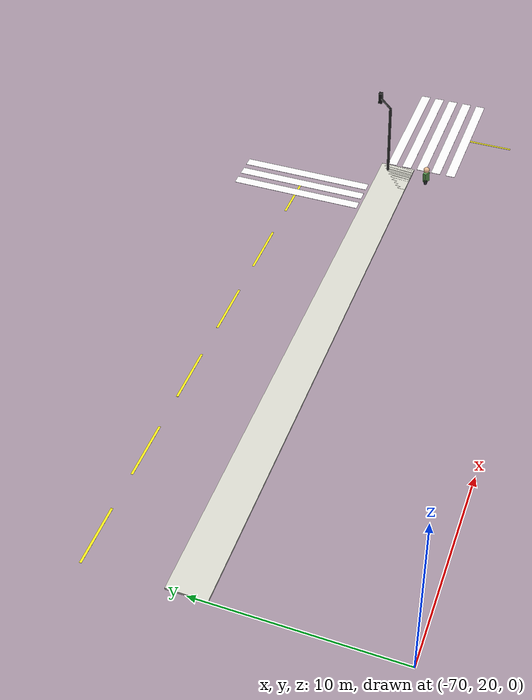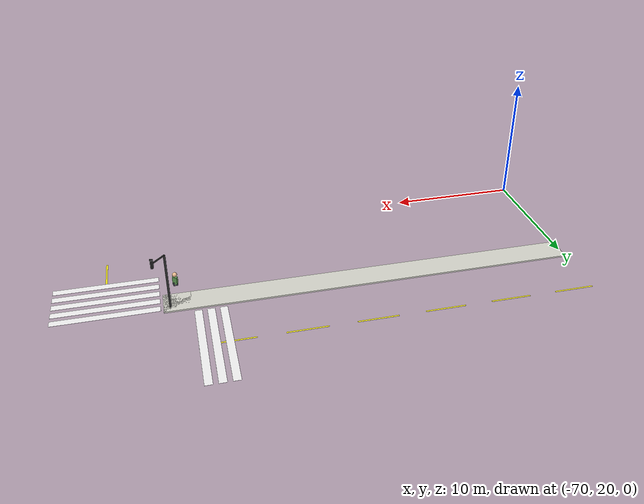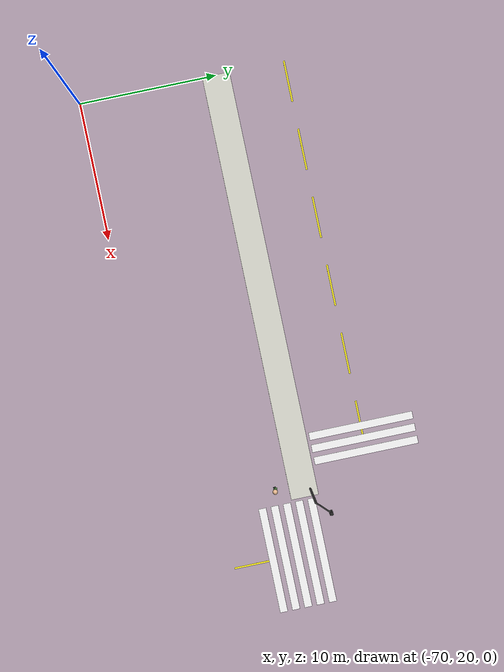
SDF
<sdf version="1.9">
 <world name="city">
  <model name="sw_h_48">
   <static>true</static>
   <pose>-54.5 30.0 0.065 0 0 0</pose>
   <link name="l">
    <collision name="c"><geometry><box><size>31.0 2.0 0.12</size></box></geometry></collision>
    <visual name="v">
     <geometry><box><size>31.0 2.0 0.12</size></box></geometry>
     <material>
      <ambient>0.82 0.82 0.78 1</ambient>
      <diffuse>0.82 0.82 0.78 1</diffuse>
      <specular>0.04 0.04 0.04 1</specular>
     </material>
    </visual>
   </link>
  </model>
  <model name="sw_corner_64">
   <static>true</static>
   <pose>-40.0 30.0 0.065 0 0 0</pose>
   <link name="l">
    <collision name="c"><geometry><box><size>2.0 2.0 0.12</size></box></geometry></collision>
    <visual name="v">
     <geometry><box><size>2.0 2.0 0.12</size></box></geometry>
     <material>
      <ambient>0.82 0.82 0.78 1</ambient>
      <diffuse>0.82 0.82 0.78 1</diffuse>
      <specular>0.04 0.04 0.04 1</specular>
     </material>
    </visual>
   </link>
  </model>
  <model name="cw_s_132">
   <static>true</static>
   <pose>-35.0 30.425 0.013000000000000001 0 0 0</pose>
   <link name="l">
    <visual name="v">
     <geometry><box><size>7.6 0.55 0.005</size></box></geometry>
     <material>
      <ambient>0.94 0.94 0.94 1</ambient>
      <diffuse>0.94 0.94 0.94 1</diffuse>
      <specular>0.04 0.04 0.04 1</specular>
     </material>
    </visual>
   </link>
  </model>
  <model name="cw_s_136">
   <static>true</static>
   <pose>-35.0 29.525 0.013000000000000001 0 0 0</pose>
   <link name="l">
    <visual name="v">
     <geometry><box><size>7.6 0.55 0.005</size></box></geometry>
     <material>
      <ambient>0.94 0.94 0.94 1</ambient>
      <diffuse>0.94 0.94 0.94 1</diffuse>
      <specular>0.04 0.04 0.04 1</specular>
     </material>
    </visual>
   </link>
  </model>
  <model name="cw_s_140">
   <static>true</static>
   <pose>-35.0 28.625 0.013000000000000001 0 0 0</pose>
   <link name="l">
    <visual name="v">
     <geometry><box><size>7.6 0.55 0.005</size></box></geometry>
     <material>
      <ambient>0.94 0.94 0.94 1</ambient>
      <diffuse>0.94 0.94 0.94 1</diffuse>
      <specular>0.04 0.04 0.04 1</specular>
     </material>
    </visual>
   </link>
  </model>
  <model name="cw_w_142">
   <static>true</static>
   <pose>-41.375 35.0 0.013000000000000001 0 0 0</pose>
   <link name="l">
    <visual name="v">
     <geometry><box><size>0.55 7.6 0.005</size></box></geometry>
     <material>
      <ambient>0.94 0.94 0.94 1</ambient>
      <diffuse>0.94 0.94 0.94 1</diffuse>
      <specular>0.04 0.04 0.04 1</specular>
     </material>
    </visual>
   </link>
  </model>
  <model name="cw_s_144">
   <static>true</static>
   <pose>-35.0 27.725 0.013000000000000001 0 0 0</pose>
   <link name="l">
    <visual name="v">
     <geometry><box><size>7.6 0.55 0.005</size></box></geometry>
     <material>
      <ambient>0.94 0.94 0.94 1</ambient>
      <diffuse>0.94 0.94 0.94 1</diffuse>
      <specular>0.04 0.04 0.04 1</specular>
     </material>
    </visual>
   </link>
  </model>
  <model name="cw_w_146">
   <static>true</static>
   <pose>-42.275 35.0 0.013000000000000001 0 0 0</pose>
   <link name="l">
    <visual name="v">
     <geometry><box><size>0.55 7.6 0.005</size></box></geometry>
     <material>
      <ambient>0.94 0.94 0.94 1</ambient>
      <diffuse>0.94 0.94 0.94 1</diffuse>
      <specular>0.04 0.04 0.04 1</specular>
     </material>
    </visual>
   </link>
  </model>
  <model name="cw_s_148">
   <static>true</static>
   <pose>-35.0 26.825 0.013000000000000001 0 0 0</pose>
   <link name="l">
    <visual name="v">
     <geometry><box><size>7.6 0.55 0.005</size></box></geometry>
     <material>
      <ambient>0.94 0.94 0.94 1</ambient>
      <diffuse>0.94 0.94 0.94 1</diffuse>
      <specular>0.04 0.04 0.04 1</specular>
     </material>
    </visual>
   </link>
  </model>
  <model name="cw_w_150">
   <static>true</static>
   <pose>-43.175 35.0 0.013000000000000001 0 0 0</pose>
   <link name="l">
    <visual name="v">
     <geometry><box><size>0.55 7.6 0.005</size></box></geometry>
     <material>
      <ambient>0.94 0.94 0.94 1</ambient>
      <diffuse>0.94 0.94 0.94 1</diffuse>
      <specular>0.04 0.04 0.04 1</specular>
     </material>
    </visual>
   </link>
  </model>
  <model name="dash_287">
   <static>true</static>
   <pose>-35.0 25.5 0.012 0 0 0</pose>
   <link name="l">
    <visual name="v">
     <geometry><box><size>0.12 3.0 0.003</size></box></geometry>
     <material>
      <ambient>0.95 0.9 0.1 1</ambient>
      <diffuse>0.95 0.9 0.1 1</diffuse>
      <specular>0.04 0.04 0.04 1</specular>
     </material>
    </visual>
   </link>
  </model>
  <model name="dash_382">
   <static>true</static>
   <pose>-68.5 35.0 0.012 0 0 0</pose>
   <link name="l">
    <visual name="v">
     <geometry><box><size>3.0 0.12 0.003</size></box></geometry>
     <material>
      <ambient>0.95 0.9 0.1 1</ambient>
      <diffuse>0.95 0.9 0.1 1</diffuse>
      <specular>0.04 0.04 0.04 1</specular>
     </material>
    </visual>
   </link>
  </model>
  <model name="dash_383">
   <static>true</static>
   <pose>-63.5 35.0 0.012 0 0 0</pose>
   <link name="l">
    <visual name="v">
     <geometry><box><size>3.0 0.12 0.003</size></box></geometry>
     <material>
      <ambient>0.95 0.9 0.1 1</ambient>
      <diffuse>0.95 0.9 0.1 1</diffuse>
      <specular>0.04 0.04 0.04 1</specular>
     </material>
    </visual>
   </link>
  </model>
  <model name="dash_384">
   <static>true</static>
   <pose>-58.5 35.0 0.012 0 0 0</pose>
   <link name="l">
    <visual name="v">
     <geometry><box><size>3.0 0.12 0.003</size></box></geometry>
     <material>
      <ambient>0.95 0.9 0.1 1</ambient>
      <diffuse>0.95 0.9 0.1 1</diffuse>
      <specular>0.04 0.04 0.04 1</specular>
     </material>
    </visual>
   </link>
  </model>
  <model name="dash_385">
   <static>true</static>
   <pose>-53.5 35.0 0.012 0 0 0</pose>
   <link name="l">
    <visual name="v">
     <geometry><box><size>3.0 0.12 0.003</size></box></geometry>
     <material>
      <ambient>0.95 0.9 0.1 1</ambient>
      <diffuse>0.95 0.9 0.1 1</diffuse>
      <specular>0.04 0.04 0.04 1</specular>
     </material>
    </visual>
   </link>
  </model>
  <model name="dash_386">
   <static>true</static>
   <pose>-48.5 35.0 0.012 0 0 0</pose>
   <link name="l">
    <visual name="v">
     <geometry><box><size>3.0 0.12 0.003</size></box></geometry>
     <material>
      <ambient>0.95 0.9 0.1 1</ambient>
      <diffuse>0.95 0.9 0.1 1</diffuse>
      <specular>0.04 0.04 0.04 1</specular>
     </material>
    </visual>
   </link>
  </model>
  <model name="dash_387">
   <static>true</static>
   <pose>-43.5 35.0 0.012 0 0 0</pose>
   <link name="l">
    <visual name="v">
     <geometry><box><size>3.0 0.12 0.003</size></box></geometry>
     <material>
      <ambient>0.95 0.9 0.1 1</ambient>
      <diffuse>0.95 0.9 0.1 1</diffuse>
      <specular>0.04 0.04 0.04 1</specular>
     </material>
    </visual>
   </link>
  </model>
  <model name="ped2_t_578">
   <static>true</static>
   <pose>-40.0 28 0.575 0 0 2.6</pose>
   <link name="l">
    <collision name="c"><geometry><box><size>0.35 0.2 0.6</size></box></geometry></collision>
    <visual name="v">
     <geometry><box><size>0.35 0.2 0.6</size></box></geometry>
     <material>
      <ambient>0.4 0.65 0.35 1</ambient>
      <diffuse>0.4 0.65 0.35 1</diffuse>
      <specular>0.04 0.04 0.04 1</specular>
     </material>
    </visual>
   </link>
  </model>
  <model name="ped2_h_579">
   <static>true</static>
   <pose>-40.0 28 1.075 0 0 0</pose>
   <link name="l">
    <visual name="v">
     <geometry><sphere><radius>0.18</radius></sphere></geometry>
     <material><ambient>0.9 0.72 0.56 1</ambient><diffuse>0.9 0.72 0.56 1</diffuse></material>
    </visual>
   </link>
  </model>
  <model name="ped2_l-0.1_580">
   <static>true</static>
   <pose>-40.1 28 0.275 0 0 0</pose>
   <link name="l">
    <collision name="c"><geometry><box><size>0.14 0.16 0.3</size></box></geometry></collision>
    <visual name="v">
     <geometry><box><size>0.14 0.16 0.3</size></box></geometry>
     <material>
      <ambient>0.25 0.25 0.3 1</ambient>
      <diffuse>0.25 0.25 0.3 1</diffuse>
      <specular>0.04 0.04 0.04 1</specular>
     </material>
    </visual>
   </link>
  </model>
  <model name="ped2_l0.1_581">
   <static>true</static>
   <pose>-39.9 28 0.275 0 0 0</pose>
   <link name="l">
    <collision name="c"><geometry><box><size>0.14 0.16 0.3</size></box></geometry></collision>
    <visual name="v">
     <geometry><box><size>0.14 0.16 0.3</size></box></geometry>
     <material>
      <ambient>0.25 0.25 0.3 1</ambient>
      <diffuse>0.25 0.25 0.3 1</diffuse>
      <specular>0.04 0.04 0.04 1</specular>
     </material>
    </visual>
   </link>
  </model>
  <model name="tl_-35_35_0_pole_738">
   <static>true</static>
   <pose>-39.5 30.5 2.255 0 0 0</pose>
   <link name="l">
    <collision name="c">
     <geometry><cylinder><radius>0.08</radius><length>4.5</length></cylinder></geometry>
    </collision>
    <visual name="v">
     <geometry><cylinder><radius>0.08</radius><length>4.5</length></cylinder></geometry>
     <material><ambient>0.2 0.2 0.2 1</ambient><diffuse>0.2 0.2 0.2 1</diffuse></material>
    </visual>
   </link>
  </model>
  <model name="tl_-35_35_0_arm_739">
   <static>true</static>
   <pose>-39.07556703849968 30.92409510866322 4.505 0 0 0.785</pose>
   <link name="l">
    <collision name="c"><geometry><box><size>1.2 0.08 0.08</size></box></geometry></collision>
    <visual name="v">
     <geometry><box><size>1.2 0.08 0.08</size></box></geometry>
     <material>
      <ambient>0.2 0.2 0.2 1</ambient>
      <diffuse>0.2 0.2 0.2 1</diffuse>
      <specular>0.04 0.04 0.04 1</specular>
     </material>
    </visual>
   </link>
  </model>
  <model name="tl_-35_35_0_hous_740">
   <static>true</static>
   <pose>-38.65113407699936 31.34819021732644 4.505 0 0 0</pose>
   <link name="l">
    <collision name="c"><geometry><box><size>0.22 0.22 0.65</size></box></geometry></collision>
    <visual name="v">
     <geometry><box><size>0.22 0.22 0.65</size></box></geometry>
     <material>
      <ambient>0.12 0.12 0.12 1</ambient>
      <diffuse>0.12 0.12 0.12 1</diffuse>
      <specular>0.04 0.04 0.04 1</specular>
     </material>
    </visual>
   </link>
  </model>
  <model name="tl_-35_35_0_l0_741">
   <static>true</static>
   <pose>-38.65113407699936 31.34819021732644 4.705 0 0 0</pose>
   <link name="l">
    <visual name="v">
     <geometry><sphere><radius>0.07</radius></sphere></geometry>
     <material><ambient>0.95 0.08 0.08 1</ambient><diffuse>0.95 0.08 0.08 1</diffuse></material>
    </visual>
   </link>
  </model>
  <model name="tl_-35_35_0_l1_742">
   <static>true</static>
   <pose>-38.65113407699936 31.34819021732644 4.505 0 0 0</pose>
   <link name="l">
    <visual name="v">
     <geometry><sphere><radius>0.07</radius></sphere></geometry>
     <material><ambient>0.9 0.8 0.05 1</ambient><diffuse>0.9 0.8 0.05 1</diffuse></material>
    </visual>
   </link>
  </model>
  <model name="tl_-35_35_0_l2_743">
   <static>true</static>
   <pose>-38.65113407699936 31.34819021732644 4.305 0 0 0</pose>
   <link name="l">
    <visual name="v">
     <geometry><sphere><radius>0.07</radius></sphere></geometry>
     <material><ambient>0.05 0.85 0.15 1</ambient><diffuse>0.05 0.85 0.15 1</diffuse></material>
    </visual>
   </link>
  </model>
 </world>
</sdf>
